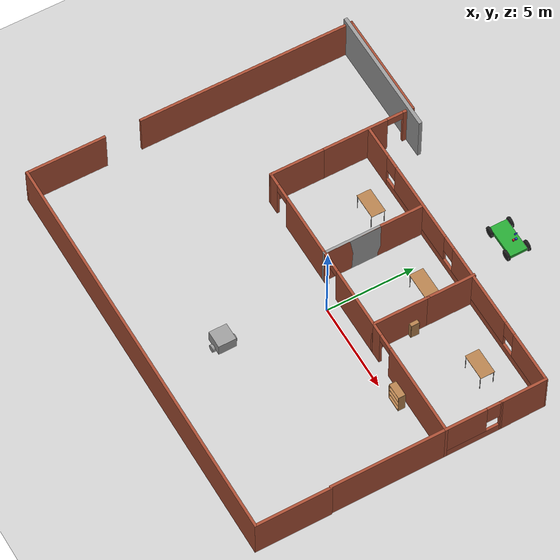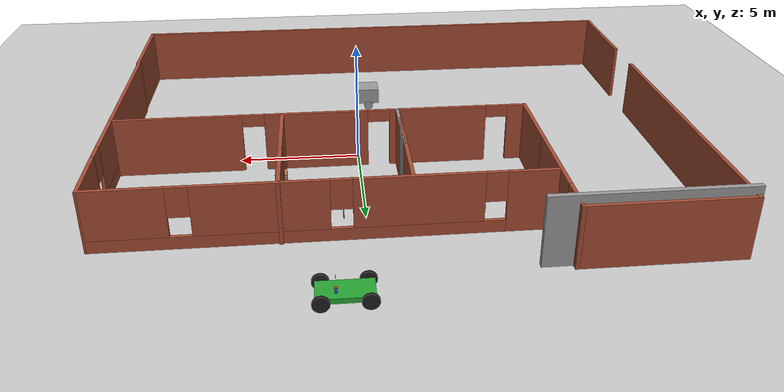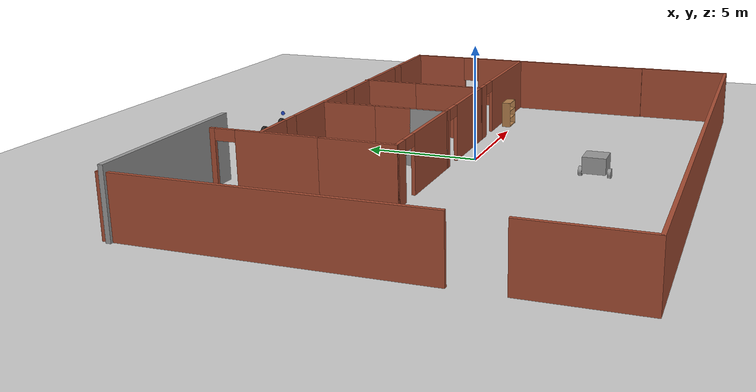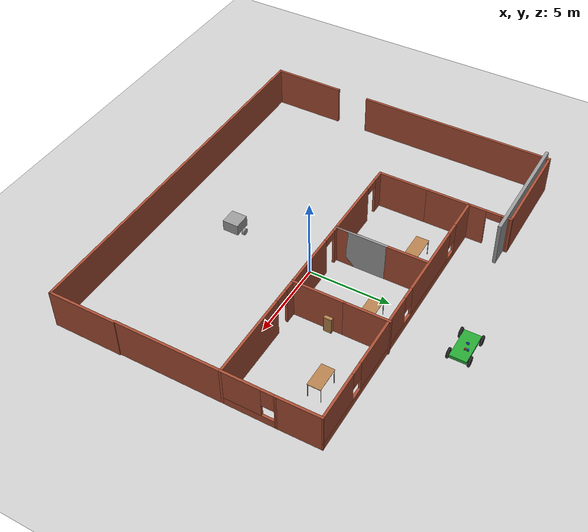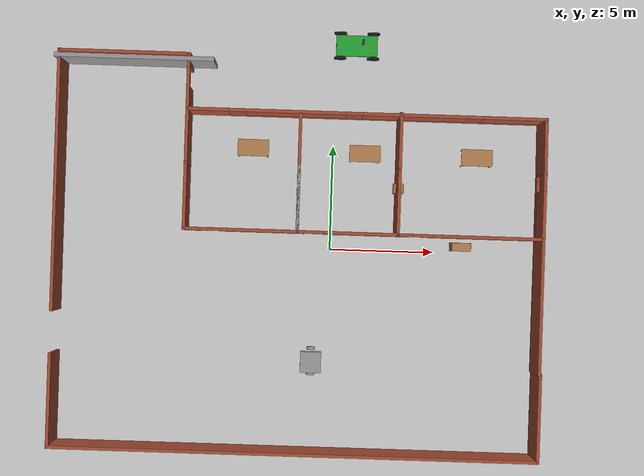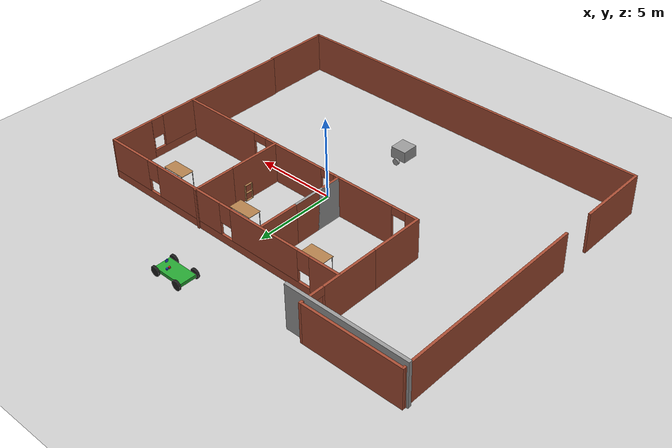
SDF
<sdf version="1.6">
 <world name="default">
  <plugin name="hello" filename="libhello.so"/>
  <light name="sun" type="directional">
   <pose>0 0 10 0 -0 0</pose>
   <diffuse>0.8 0.8 0.8 1</diffuse>
   <specular>0.2 0.2 0.2 1</specular>
   <attenuation>
    <range>1000</range>
    <constant>0.9</constant>
    <linear>0.01</linear>
    <quadratic>0.001</quadratic>
   </attenuation>
   <direction>-0.5 0.1 -0.9</direction>
  </light>
  <model name="ground_plane">
   <static>1</static>
   <link name="link">
    <collision name="collision">
     <geometry><plane><normal>0 0 1</normal><size>100 100</size></plane></geometry>
     <surface>
      <contact><collide_bitmask>65535</collide_bitmask></contact>
      <friction><ode><mu>100</mu><mu2>50</mu2></ode></friction>
     </surface>
    </collision>
    <visual name="visual">
     <cast_shadows>0</cast_shadows>
     <geometry><plane><normal>0 0 1</normal><size>100 100</size></plane></geometry>
     <material>
      <script><uri>file://media/materials/scripts/gazebo.material</uri><name>Gazebo/Grey</name></script>
     </material>
    </visual>
   </link>
  </model>
  <gravity>0 0 -9.8</gravity>
  <magnetic_field>6e-06 2.3e-05 -4.2e-05</magnetic_field>
  <atmosphere type="adiabatic"/>
  <physics name="default_physics" default="0" type="ode">
   <max_step_size>0.001</max_step_size>
   <real_time_factor>1</real_time_factor>
   <real_time_update_rate>1000</real_time_update_rate>
  </physics>
  <scene><ambient>0.4 0.4 0.4 1</ambient><background>0.7 0.7 0.7 1</background><shadows>1</shadows></scene>
  <spherical_coordinates>
   <surface_model>EARTH_WGS84</surface_model>
   <latitude_deg>0</latitude_deg>
   <longitude_deg>0</longitude_deg>
   <elevation>0</elevation>
   <heading_deg>0</heading_deg>
  </spherical_coordinates>
  <model name="factory">
   <pose>-1.52295 -0.36855 0 0 -0 0</pose>
   <link name="Wall_1">
    <collision name="Wall_1_Collision">
     <geometry><box><size>6.5 0.15 2.5</size></box></geometry>
     <pose>0 0 1.25 0 -0 0</pose>
    </collision>
    <visual name="Wall_1_Visual">
     <pose>0 0 1.25 0 -0 0</pose>
     <geometry><box><size>6.5 0.15 2.5</size></box></geometry>
     <material>
      <script><uri>file://media/materials/scripts/gazebo.material</uri><name>Gazebo/Bricks</name></script>
      <ambient>1 1 1 1</ambient>
     </material>
     <meta><layer>0</layer></meta>
    </visual>
    <pose>11.5 -2.025 0 0 -0 1.5708</pose>
   </link>
   <link name="Wall_10">
    <collision name="Wall_10_Collision">
     <geometry><box><size>3.25 0.15 2.5</size></box></geometry>
     <pose>0 0 1.25 0 -0 0</pose>
    </collision>
    <visual name="Wall_10_Visual">
     <pose>0 0 1.25 0 -0 0</pose>
     <geometry><box><size>3.25 0.15 2.5</size></box></geometry>
     <material>
      <script><uri>file://media/materials/scripts/gazebo.material</uri><name>Gazebo/Bricks</name></script>
      <ambient>1 1 1 1</ambient>
     </material>
     <meta><layer>0</layer></meta>
    </visual>
    <pose>-5.45 2.7 0 0 0 -1.5708</pose>
   </link>
   <link name="Wall_11">
    <pose>-2.775 1.15 0 0 -0 0</pose>
    <visual name="Wall_11_Visual_0">
     <pose>-2.34253 0 1.25 0 -0 0</pose>
     <geometry><box><size>0.814938 0.15 2.5</size></box></geometry>
     <material>
      <script><uri>file://media/materials/scripts/gazebo.material</uri><name>Gazebo/Bricks</name></script>
      <ambient>1 1 1 1</ambient>
     </material>
     <meta><layer>0</layer></meta>
    </visual>
    <collision name="Wall_11_Collision_0">
     <geometry><box><size>0.814938 0.15 2.5</size></box></geometry>
     <pose>-2.34253 0 1.25 0 -0 0</pose>
    </collision>
    <visual name="Wall_11_Visual_1">
     <pose>0.857469 0 1.25 0 -0 0</pose>
     <geometry><box><size>3.78506 0.15 2.5</size></box></geometry>
     <material>
      <script><uri>file://media/materials/scripts/gazebo.material</uri><name>Gazebo/Bricks</name></script>
      <ambient>1 1 1 1</ambient>
     </material>
     <meta><layer>0</layer></meta>
    </visual>
    <collision name="Wall_11_Collision_1">
     <geometry><box><size>3.78506 0.15 2.5</size></box></geometry>
     <pose>0.857469 0 1.25 0 -0 0</pose>
    </collision>
    <visual name="Wall_11_Visual_2">
     <pose>-1.48506 0 2.25 0 -0 0</pose>
     <geometry><box><size>0.9 0.15 0.5</size></box></geometry>
     <material>
      <script><uri>file://media/materials/scripts/gazebo.material</uri><name>Gazebo/Bricks</name></script>
      <ambient>1 1 1 1</ambient>
     </material>
     <meta><layer>0</layer></meta>
    </visual>
    <collision name="Wall_11_Collision_2">
     <geometry><box><size>0.9 0.15 0.5</size></box></geometry>
     <pose>-1.48506 0 2.25 0 -0 0</pose>
    </collision>
   </link>
   <link name="Wall_12">
    <collision name="Wall_12_Collision">
     <geometry><box><size>3.25 0.15 2.5</size></box></geometry>
     <pose>0 0 1.25 0 -0 0</pose>
    </collision>
    <visual name="Wall_12_Visual">
     <pose>0 0 1.25 0 -0 0</pose>
     <geometry><box><size>3.25 0.15 2.5</size></box></geometry>
     <material>
      <script><uri>file://media/materials/scripts/gazebo.material</uri><name>Gazebo/Grey</name></script>
      <ambient>1 1 1 1</ambient>
     </material>
     <meta><layer>0</layer></meta>
    </visual>
    <pose>-0.100025 2.69977 0 0 -0 1.57081</pose>
   </link>
   <link name="Wall_13">
    <collision name="Wall_13_Collision">
     <geometry><box><size>3.25 0.15 2.5</size></box></geometry>
     <pose>0 0 1.25 0 -0 0</pose>
    </collision>
    <visual name="Wall_13_Visual">
     <pose>0 0 1.25 0 -0 0</pose>
     <geometry><box><size>3.25 0.15 2.5</size></box></geometry>
     <material>
      <script><uri>file://media/materials/scripts/gazebo.material</uri><name>Gazebo/Bricks</name></script>
      <ambient>1 1 1 1</ambient>
     </material>
     <meta><layer>0</layer></meta>
    </visual>
    <pose>-0.100025 2.69977 0 0 0 -1.57078</pose>
   </link>
   <link name="Wall_14">
    <pose>2.275 1.15 0 0 -0 0</pose>
    <visual name="Wall_14_Visual_0">
     <pose>-2.24379 0 1.25 0 -0 0</pose>
     <geometry><box><size>0.412411 0.15 2.5</size></box></geometry>
     <material>
      <script><uri>file://media/materials/scripts/gazebo.material</uri><name>Gazebo/Bricks</name></script>
      <ambient>1 1 1 1</ambient>
     </material>
     <meta><layer>0</layer></meta>
    </visual>
    <collision name="Wall_14_Collision_0">
     <geometry><box><size>0.412411 0.15 2.5</size></box></geometry>
     <pose>-2.24379 0 1.25 0 -0 0</pose>
    </collision>
    <visual name="Wall_14_Visual_1">
     <pose>0.656206 0 1.25 0 -0 0</pose>
     <geometry><box><size>3.58759 0.15 2.5</size></box></geometry>
     <material>
      <script><uri>file://media/materials/scripts/gazebo.material</uri><name>Gazebo/Bricks</name></script>
      <ambient>1 1 1 1</ambient>
     </material>
     <meta><layer>0</layer></meta>
    </visual>
    <collision name="Wall_14_Collision_1">
     <geometry><box><size>3.58759 0.15 2.5</size></box></geometry>
     <pose>0.656206 0 1.25 0 -0 0</pose>
    </collision>
    <visual name="Wall_14_Visual_2">
     <pose>-1.58759 0 2.25 0 -0 0</pose>
     <geometry><box><size>0.9 0.15 0.5</size></box></geometry>
     <material>
      <script><uri>file://media/materials/scripts/gazebo.material</uri><name>Gazebo/Bricks</name></script>
      <ambient>1 1 1 1</ambient>
     </material>
     <meta><layer>0</layer></meta>
    </visual>
    <collision name="Wall_14_Collision_2">
     <geometry><box><size>0.9 0.15 0.5</size></box></geometry>
     <pose>-1.58759 0 2.25 0 -0 0</pose>
    </collision>
   </link>
   <link name="Wall_18">
    <pose>11.5 2.7 0 0 0 -1.5708</pose>
    <visual name="Wall_18_Visual_0">
     <pose>-1.58269 0 1.25 0 -0 0</pose>
     <geometry><box><size>0.08462 0.15 2.5</size></box></geometry>
     <material>
      <script><uri>file://media/materials/scripts/gazebo.material</uri><name>Gazebo/Bricks</name></script>
      <ambient>1 1 1 1</ambient>
     </material>
     <meta><layer>0</layer></meta>
    </visual>
    <collision name="Wall_18_Collision_0">
     <geometry><box><size>0.08462 0.15 2.5</size></box></geometry>
     <pose>-1.58269 0 1.25 0 -0 0</pose>
    </collision>
    <visual name="Wall_18_Visual_1">
     <pose>0.04231 0 0.25 0 -0 0</pose>
     <geometry><box><size>3.16538 0.15 0.5</size></box></geometry>
     <material>
      <script><uri>file://media/materials/scripts/gazebo.material</uri><name>Gazebo/Bricks</name></script>
      <ambient>1 1 1 1</ambient>
     </material>
     <meta><layer>0</layer></meta>
    </visual>
    <collision name="Wall_18_Collision_1">
     <geometry><box><size>3.16538 0.15 0.5</size></box></geometry>
     <pose>0.04231 0 0.25 0 -0 0</pose>
    </collision>
    <visual name="Wall_18_Visual_2">
     <pose>0.44231 0 1.5 0 -0 0</pose>
     <geometry><box><size>2.36538 0.15 2</size></box></geometry>
     <material>
      <script><uri>file://media/materials/scripts/gazebo.material</uri><name>Gazebo/Bricks</name></script>
      <ambient>1 1 1 1</ambient>
     </material>
     <meta><layer>0</layer></meta>
    </visual>
    <collision name="Wall_18_Collision_2">
     <geometry><box><size>2.36538 0.15 2</size></box></geometry>
     <pose>0.44231 0 1.5 0 -0 0</pose>
    </collision>
    <visual name="Wall_18_Visual_3">
     <pose>-1.14038 0 1.9 0 -0 0</pose>
     <geometry><box><size>0.8 0.15 1.2</size></box></geometry>
     <material>
      <script><uri>file://media/materials/scripts/gazebo.material</uri><name>Gazebo/Bricks</name></script>
      <ambient>1 1 1 1</ambient>
     </material>
     <meta><layer>0</layer></meta>
    </visual>
    <collision name="Wall_18_Collision_3">
     <geometry><box><size>0.8 0.15 1.2</size></box></geometry>
     <pose>-1.14038 0 1.9 0 -0 0</pose>
    </collision>
   </link>
   <link name="Wall_19">
    <pose>8.075 1.15 0 0 -0 3.14159</pose>
    <visual name="Wall_19_Visual_0">
     <pose>-0.851138 0 1.25 0 -0 0</pose>
     <geometry><box><size>5.29772 0.15 2.5</size></box></geometry>
     <material>
      <script><uri>file://media/materials/scripts/gazebo.material</uri><name>Gazebo/Bricks</name></script>
      <ambient>1 1 1 1</ambient>
     </material>
     <meta><layer>0</layer></meta>
    </visual>
    <collision name="Wall_19_Collision_0">
     <geometry><box><size>5.29772 0.15 2.5</size></box></geometry>
     <pose>-0.851138 0 1.25 0 -0 0</pose>
    </collision>
    <visual name="Wall_19_Visual_1">
     <pose>3.09886 0 1.25 0 -0 0</pose>
     <geometry><box><size>0.802276 0.15 2.5</size></box></geometry>
     <material>
      <script><uri>file://media/materials/scripts/gazebo.material</uri><name>Gazebo/Bricks</name></script>
      <ambient>1 1 1 1</ambient>
     </material>
     <meta><layer>0</layer></meta>
    </visual>
    <collision name="Wall_19_Collision_1">
     <geometry><box><size>0.802276 0.15 2.5</size></box></geometry>
     <pose>3.09886 0 1.25 0 -0 0</pose>
    </collision>
    <visual name="Wall_19_Visual_2">
     <pose>2.24772 0 2.25 0 -0 0</pose>
     <geometry><box><size>0.9 0.15 0.5</size></box></geometry>
     <material>
      <script><uri>file://media/materials/scripts/gazebo.material</uri><name>Gazebo/Bricks</name></script>
      <ambient>1 1 1 1</ambient>
     </material>
     <meta><layer>0</layer></meta>
    </visual>
    <collision name="Wall_19_Collision_2">
     <geometry><box><size>0.9 0.15 0.5</size></box></geometry>
     <pose>2.24772 0 2.25 0 -0 0</pose>
    </collision>
   </link>
   <link name="Wall_21">
    <pose>3.04644 6.78716 0 0 -0 0</pose>
    <visual name="Wall_21_Visual_0">
     <pose>-7.52728 0 1.25 0 -0 0</pose>
     <geometry><box><size>1.94543 0.15 2.5</size></box></geometry>
     <material>
      <script><uri>file://media/materials/scripts/gazebo.material</uri><name>Gazebo/Bricks</name></script>
      <ambient>1 1 1 1</ambient>
     </material>
     <meta><layer>0</layer></meta>
    </visual>
    <collision name="Wall_21_Collision_0">
     <geometry><box><size>1.94543 0.15 2.5</size></box></geometry>
     <pose>-7.52728 0 1.25 0 -0 0</pose>
    </collision>
    <visual name="Wall_21_Visual_1">
     <pose>0.972717 0 0.25 0 -0 0</pose>
     <geometry><box><size>15.0546 0.15 0.5</size></box></geometry>
     <material>
      <script><uri>file://media/materials/scripts/gazebo.material</uri><name>Gazebo/Bricks</name></script>
      <ambient>1 1 1 1</ambient>
     </material>
     <meta><layer>0</layer></meta>
    </visual>
    <collision name="Wall_21_Collision_1">
     <geometry><box><size>15.0546 0.15 0.5</size></box></geometry>
     <pose>0.972717 0 0.25 0 -0 0</pose>
    </collision>
    <visual name="Wall_21_Visual_2">
     <pose>-3.37545 0 1.5 0 -0 0</pose>
     <geometry><box><size>4.75824 0.15 2</size></box></geometry>
     <material>
      <script><uri>file://media/materials/scripts/gazebo.material</uri><name>Gazebo/Bricks</name></script>
      <ambient>1 1 1 1</ambient>
     </material>
     <meta><layer>0</layer></meta>
    </visual>
    <collision name="Wall_21_Collision_2">
     <geometry><box><size>4.75824 0.15 2</size></box></geometry>
     <pose>-3.37545 0 1.5 0 -0 0</pose>
    </collision>
    <visual name="Wall_21_Visual_3">
     <pose>2.25316 0 1.5 0 -0 0</pose>
     <geometry><box><size>4.89896 0.15 2</size></box></geometry>
     <material>
      <script><uri>file://media/materials/scripts/gazebo.material</uri><name>Gazebo/Bricks</name></script>
      <ambient>1 1 1 1</ambient>
     </material>
     <meta><layer>0</layer></meta>
    </visual>
    <collision name="Wall_21_Collision_3">
     <geometry><box><size>4.89896 0.15 2</size></box></geometry>
     <pose>2.25316 0 1.5 0 -0 0</pose>
    </collision>
    <visual name="Wall_21_Visual_4">
     <pose>7.00132 0 1.5 0 -0 0</pose>
     <geometry><box><size>2.99736 0.15 2</size></box></geometry>
     <material>
      <script><uri>file://media/materials/scripts/gazebo.material</uri><name>Gazebo/Bricks</name></script>
      <ambient>1 1 1 1</ambient>
     </material>
     <meta><layer>0</layer></meta>
    </visual>
    <collision name="Wall_21_Collision_4">
     <geometry><box><size>2.99736 0.15 2</size></box></geometry>
     <pose>7.00132 0 1.5 0 -0 0</pose>
    </collision>
    <visual name="Wall_21_Visual_5">
     <pose>-6.15457 0 1.9 0 -0 0</pose>
     <geometry><box><size>0.8 0.15 1.2</size></box></geometry>
     <material>
      <script><uri>file://media/materials/scripts/gazebo.material</uri><name>Gazebo/Bricks</name></script>
      <ambient>1 1 1 1</ambient>
     </material>
     <meta><layer>0</layer></meta>
    </visual>
    <collision name="Wall_21_Collision_5">
     <geometry><box><size>0.8 0.15 1.2</size></box></geometry>
     <pose>-6.15457 0 1.9 0 -0 0</pose>
    </collision>
    <visual name="Wall_21_Visual_6">
     <pose>-0.596322 0 1.9 0 -0 0</pose>
     <geometry><box><size>0.8 0.15 1.2</size></box></geometry>
     <material>
      <script><uri>file://media/materials/scripts/gazebo.material</uri><name>Gazebo/Bricks</name></script>
      <ambient>1 1 1 1</ambient>
     </material>
     <meta><layer>0</layer></meta>
    </visual>
    <collision name="Wall_21_Collision_6">
     <geometry><box><size>0.8 0.15 1.2</size></box></geometry>
     <pose>-0.596322 0 1.9 0 -0 0</pose>
    </collision>
    <visual name="Wall_21_Visual_7">
     <pose>5.10264 0 1.9 0 -0 0</pose>
     <geometry><box><size>0.8 0.15 1.2</size></box></geometry>
     <material>
      <script><uri>file://media/materials/scripts/gazebo.material</uri><name>Gazebo/Bricks</name></script>
      <ambient>1 1 1 1</ambient>
     </material>
     <meta><layer>0</layer></meta>
    </visual>
    <collision name="Wall_21_Collision_7">
     <geometry><box><size>0.8 0.15 1.2</size></box></geometry>
     <pose>5.10264 0 1.9 0 -0 0</pose>
    </collision>
   </link>
   <link name="Wall_22">
    <collision name="Wall_22_Collision">
     <geometry><box><size>2.68732 0.15 2.5</size></box></geometry>
     <pose>0 0 1.25 0 -0 0</pose>
    </collision>
    <visual name="Wall_22_Visual">
     <pose>0 0 1.25 0 -0 0</pose>
     <geometry><box><size>2.68732 0.15 2.5</size></box></geometry>
     <material>
      <script><uri>file://media/materials/scripts/gazebo.material</uri><name>Gazebo/Bricks</name></script>
      <ambient>1 1 1 1</ambient>
     </material>
     <meta><layer>0</layer></meta>
    </visual>
    <pose>11.4857 5.51858 0 0 0 -1.55954</pose>
   </link>
   <link name="Wall_28">
    <collision name="Wall_28_Collision">
     <geometry><box><size>2.576 0.15 2.5</size></box></geometry>
     <pose>0 0 1.25 0 -0 0</pose>
    </collision>
    <visual name="Wall_28_Visual">
     <pose>0 0 1.25 0 -0 0</pose>
     <geometry><box><size>2.576 0.15 2.5</size></box></geometry>
     <material>
      <script><uri>file://media/materials/scripts/gazebo.material</uri><name>Gazebo/Bricks</name></script>
      <ambient>1 1 1 1</ambient>
     </material>
     <meta><layer>0</layer></meta>
    </visual>
    <pose>-0.10005 5.46255 0 0 -0 1.5708</pose>
   </link>
   <link name="Wall_3">
    <collision name="Wall_3_Collision">
     <geometry><box><size>3.25 0.15 2.5</size></box></geometry>
     <pose>0 0 1.25 0 -0 0</pose>
    </collision>
    <visual name="Wall_3_Visual">
     <pose>0 0 1.25 0 -0 0</pose>
     <geometry><box><size>3.25 0.15 2.5</size></box></geometry>
     <material>
      <script><uri>file://media/materials/scripts/gazebo.material</uri><name>Gazebo/Bricks</name></script>
      <ambient>1 1 1 1</ambient>
     </material>
     <meta><layer>0</layer></meta>
    </visual>
    <pose>4.65 2.7 0 0 -0 1.5708</pose>
   </link>
   <link name="Wall_30">
    <collision name="Wall_30_Collision">
     <geometry><box><size>2.75 0.15 2.5</size></box></geometry>
     <pose>0 0 1.25 0 -0 0</pose>
    </collision>
    <visual name="Wall_30_Visual">
     <pose>0 0 1.25 0 -0 0</pose>
     <geometry><box><size>2.75 0.15 2.5</size></box></geometry>
     <material>
      <script><uri>file://media/materials/scripts/gazebo.material</uri><name>Gazebo/Bricks</name></script>
      <ambient>1 1 1 1</ambient>
     </material>
     <meta><layer>0</layer></meta>
    </visual>
    <pose>4.65 5.55 0 0 -0 1.5708</pose>
   </link>
   <link name="Wall_32">
    <collision name="Wall_32_Collision">
     <geometry><box><size>4.5 0.15 2.5</size></box></geometry>
     <pose>0 0 1.25 0 -0 0</pose>
    </collision>
    <visual name="Wall_32_Visual">
     <pose>0 0 1.25 0 -0 0</pose>
     <geometry><box><size>4.5 0.15 2.5</size></box></geometry>
     <material>
      <script><uri>file://media/materials/scripts/gazebo.material</uri><name>Gazebo/Bricks</name></script>
      <ambient>1 1 1 1</ambient>
     </material>
     <meta><layer>0</layer></meta>
    </visual>
    <pose>-11.55 -7.175 0 0 0 -1.5708</pose>
   </link>
   <link name="Wall_33">
    <collision name="Wall_33_Collision">
     <geometry><box><size>23.25 0.15 2.5</size></box></geometry>
     <pose>0 0 1.25 0 -0 0</pose>
    </collision>
    <visual name="Wall_33_Visual">
     <pose>0 0 1.25 0 -0 0</pose>
     <geometry><box><size>23.25 0.15 2.5</size></box></geometry>
     <material>
      <script><uri>file://media/materials/scripts/gazebo.material</uri><name>Gazebo/Bricks</name></script>
      <ambient>1 1 1 1</ambient>
     </material>
     <meta><layer>0</layer></meta>
    </visual>
    <pose>1e-06 -9.35 0 0 -0 0</pose>
   </link>
   <link name="Wall_34">
    <collision name="Wall_34_Collision">
     <geometry><box><size>4.25 0.15 2.5</size></box></geometry>
     <pose>0 0 1.25 0 -0 0</pose>
    </collision>
    <visual name="Wall_34_Visual">
     <pose>0 0 1.25 0 -0 0</pose>
     <geometry><box><size>4.25 0.15 2.5</size></box></geometry>
     <material>
      <script><uri>file://media/materials/scripts/gazebo.material</uri><name>Gazebo/Bricks</name></script>
      <ambient>1 1 1 1</ambient>
     </material>
     <meta><layer>0</layer></meta>
    </visual>
    <pose>11.55 -7.3 0 0 -0 1.5708</pose>
   </link>
   <link name="Wall_5">
    <pose>-5.45 6.8 0 0 -0 1.5708</pose>
    <visual name="Wall_5_Visual_0">
     <pose>-0.779824 0 1.25 0 -0 0</pose>
     <geometry><box><size>3.69035 0.15 2.5</size></box></geometry>
     <material>
      <script><uri>file://media/materials/scripts/gazebo.material</uri><name>Gazebo/Bricks</name></script>
      <ambient>1 1 1 1</ambient>
     </material>
     <meta><layer>0</layer></meta>
    </visual>
    <collision name="Wall_5_Collision_0">
     <geometry><box><size>3.69035 0.15 2.5</size></box></geometry>
     <pose>-0.779824 0 1.25 0 -0 0</pose>
    </collision>
    <visual name="Wall_5_Visual_1">
     <pose>2.29518 0 1.25 0 -0 0</pose>
     <geometry><box><size>0.659647 0.15 2.5</size></box></geometry>
     <material>
      <script><uri>file://media/materials/scripts/gazebo.material</uri><name>Gazebo/Bricks</name></script>
      <ambient>1 1 1 1</ambient>
     </material>
     <meta><layer>0</layer></meta>
    </visual>
    <collision name="Wall_5_Collision_1">
     <geometry><box><size>0.659647 0.15 2.5</size></box></geometry>
     <pose>2.29518 0 1.25 0 -0 0</pose>
    </collision>
    <visual name="Wall_5_Visual_2">
     <pose>1.51535 0 2.25 0 -0 0</pose>
     <geometry><box><size>0.9 0.15 0.5</size></box></geometry>
     <material>
      <script><uri>file://media/materials/scripts/gazebo.material</uri><name>Gazebo/Bricks</name></script>
      <ambient>1 1 1 1</ambient>
     </material>
     <meta><layer>0</layer></meta>
    </visual>
    <collision name="Wall_5_Collision_2">
     <geometry><box><size>0.9 0.15 0.5</size></box></geometry>
     <pose>1.51535 0 2.25 0 -0 0</pose>
    </collision>
   </link>
   <link name="Wall_6">
    <collision name="Wall_6_Collision">
     <geometry><box><size>6.25 0.15 2.5</size></box></geometry>
     <pose>0 0 1.25 0 -0 0</pose>
    </collision>
    <visual name="Wall_6_Visual">
     <pose>0 0 1.25 0 -0 0</pose>
     <geometry><box><size>6.25 0.15 2.5</size></box></geometry>
     <material>
      <script><uri>file://media/materials/scripts/gazebo.material</uri><name>Gazebo/Bricks</name></script>
      <ambient>1 1 1 1</ambient>
     </material>
     <meta><layer>0</layer></meta>
    </visual>
    <pose>-8.5 9.35 0 0 -0 3.14159</pose>
   </link>
   <link name="Wall_7">
    <pose>-11.55 2.175 0 0 0 -1.5708</pose>
    <visual name="Wall_7_Visual_0">
     <pose>-1.06219 0 1.25 0 -0 0</pose>
     <geometry><box><size>12.3756 0.15 2.5</size></box></geometry>
     <material>
      <script><uri>file://media/materials/scripts/gazebo.material</uri><name>Gazebo/Bricks</name></script>
      <ambient>1 1 1 1</ambient>
     </material>
     <meta><layer>0</layer></meta>
    </visual>
    <collision name="Wall_7_Collision_0">
     <geometry><box><size>12.3756 0.15 2.5</size></box></geometry>
     <pose>-1.06219 0 1.25 0 -0 0</pose>
    </collision>
   </link>
   <static>1</static>
  </model>
  <model name="car">
   <link name="chassis">
    <pose>0 0 0.3 0 -0 0</pose>
    <collision name="collision"><geometry><box><size>2 1 0.2</size></box></geometry></collision>
    <visual name="visual">
     <geometry><box><size>2 1 0.2</size></box></geometry>
     <material>
      <script><uri>file://media/materials/scripts/gazebo.material</uri><name>Gazebo/Green</name></script>
     </material>
    </visual>
    <inertial>
     <inertia><ixx>1</ixx><ixy>0</ixy><ixz>0</ixz><iyy>1</iyy><iyz>0</iyz><izz>1</izz></inertia>
     <mass>1</mass>
    </inertial>
   </link>
   <link name="front_left_wheel">
    <pose>0.8 0.6 0.3 -0 1.5707 1.5707</pose>
    <collision name="collision">
     <geometry><cylinder><radius>0.3</radius><length>0.1</length></cylinder></geometry>
    </collision>
    <visual name="visual">
     <geometry><cylinder><radius>0.3</radius><length>0.1</length></cylinder></geometry>
     <material>
      <script><uri>file://media/materials/scripts/gazebo.material</uri><name>Gazebo/Black</name></script>
     </material>
    </visual>
    <inertial>
     <inertia><ixx>1</ixx><ixy>0</ixy><ixz>0</ixz><iyy>1</iyy><iyz>0</iyz><izz>1</izz></inertia>
     <mass>1</mass>
    </inertial>
   </link>
   <link name="front_right_wheel">
    <pose>0.8 -0.6 0.3 -0 1.5707 1.5707</pose>
    <collision name="collision">
     <geometry><cylinder><radius>0.3</radius><length>0.1</length></cylinder></geometry>
    </collision>
    <visual name="visual">
     <geometry><cylinder><radius>0.3</radius><length>0.1</length></cylinder></geometry>
     <material>
      <script><uri>file://media/materials/scripts/gazebo.material</uri><name>Gazebo/Black</name></script>
     </material>
    </visual>
    <inertial>
     <inertia><ixx>1</ixx><ixy>0</ixy><ixz>0</ixz><iyy>1</iyy><iyz>0</iyz><izz>1</izz></inertia>
     <mass>1</mass>
    </inertial>
   </link>
   <link name="back_right_wheel">
    <pose>-0.8 -0.6 0.3 -0 1.5707 1.5707</pose>
    <collision name="collision">
     <geometry><cylinder><radius>0.3</radius><length>0.1</length></cylinder></geometry>
    </collision>
    <visual name="visual">
     <geometry><cylinder><radius>0.3</radius><length>0.1</length></cylinder></geometry>
     <material>
      <script><uri>file://media/materials/scripts/gazebo.material</uri><name>Gazebo/Black</name></script>
     </material>
    </visual>
    <inertial>
     <inertia><ixx>1</ixx><ixy>0</ixy><ixz>0</ixz><iyy>1</iyy><iyz>0</iyz><izz>1</izz></inertia>
     <mass>1</mass>
    </inertial>
   </link>
   <link name="back_left_wheel">
    <pose>-0.8 0.6 0.3 -0 1.5707 1.5707</pose>
    <collision name="collision">
     <geometry><cylinder><radius>0.3</radius><length>0.1</length></cylinder></geometry>
    </collision>
    <visual name="visual">
     <geometry><cylinder><radius>0.3</radius><length>0.1</length></cylinder></geometry>
     <material>
      <script><uri>file://media/materials/scripts/gazebo.material</uri><name>Gazebo/Black</name></script>
     </material>
    </visual>
    <inertial>
     <inertia><ixx>1</ixx><ixy>0</ixy><ixz>0</ixz><iyy>1</iyy><iyz>0</iyz><izz>1</izz></inertia>
     <mass>1</mass>
    </inertial>
   </link>
   <link name="gas_pedal">
    <pose>0.3 0.1 0.5 0 -0 0</pose>
    <collision name="collision"><geometry><box><size>0.1 0.1 0.1</size></box></geometry></collision>
    <visual name="visual">
     <geometry><box><size>0.1 0.1 0.1</size></box></geometry>
     <material>
      <script><uri>file://media/materials/scripts/gazebo.material</uri><name>Gazebo/Red</name></script>
     </material>
    </visual>
    <inertial>
     <inertia><ixx>1</ixx><ixy>0</ixy><ixz>0</ixz><iyy>1</iyy><iyz>0</iyz><izz>1</izz></inertia>
     <mass>1</mass>
    </inertial>
   </link>
   <link name="brake_pedal">
    <pose>0.3 0.25 0.5 0 -0 0</pose>
    <collision name="collision"><geometry><box><size>0.1 0.1 0.1</size></box></geometry></collision>
    <visual name="visual">
     <geometry><box><size>0.1 0.1 0.1</size></box></geometry>
     <material>
      <script><uri>file://media/materials/scripts/gazebo.material</uri><name>Gazebo/Blue</name></script>
     </material>
    </visual>
    <inertial>
     <inertia><ixx>1</ixx><ixy>0</ixy><ixz>0</ixz><iyy>1</iyy><iyz>0</iyz><izz>1</izz></inertia>
     <mass>1</mass>
    </inertial>
   </link>
   <link name="steering_wheel">
    <pose>0.3 0.2 1 0 1.5707 0</pose>
    <collision name="collision">
     <geometry><cylinder><radius>0.1</radius><length>0.01</length></cylinder></geometry>
    </collision>
    <visual name="visual">
     <geometry><cylinder><radius>0.1</radius><length>0.01</length></cylinder></geometry>
     <material>
      <script><uri>file://media/materials/scripts/gazebo.material</uri><name>Gazebo/Blue</name></script>
     </material>
    </visual>
    <inertial>
     <inertia><ixx>1</ixx><ixy>0</ixy><ixz>0</ixz><iyy>1</iyy><iyz>0</iyz><izz>1</izz></inertia>
     <mass>1</mass>
    </inertial>
   </link>
   <joint name="gas_joint" type="prismatic">
    <parent>chassis</parent>
    <child>gas_pedal</child>
    <axis>
     <xyz>1 0 0</xyz>
     <limit><lower>0</lower><upper>0.2</upper></limit>
     <use_parent_model_frame>1</use_parent_model_frame>
     <dynamics><spring_reference>0</spring_reference><spring_stiffness>0</spring_stiffness></dynamics>
    </axis>
   </joint>
   <joint name="brake_joint" type="prismatic">
    <parent>chassis</parent>
    <child>brake_pedal</child>
    <axis>
     <xyz>1 0 0</xyz>
     <limit><lower>0</lower><upper>0.2</upper></limit>
     <use_parent_model_frame>1</use_parent_model_frame>
     <dynamics><spring_reference>0</spring_reference><spring_stiffness>0</spring_stiffness></dynamics>
    </axis>
   </joint>
   <joint name="steering_joint" type="revolute">
    <parent>chassis</parent>
    <child>steering_wheel</child>
    <axis>
     <xyz>1 0 0</xyz>
     <limit><lower>-7.853</lower><upper>7.853</upper></limit>
     <use_parent_model_frame>1</use_parent_model_frame>
     <dynamics><spring_reference>0</spring_reference><spring_stiffness>0</spring_stiffness></dynamics>
    </axis>
   </joint>
   <joint name="front_left_joint" type="revolute2">
    <parent>chassis</parent>
    <child>front_left_wheel</child>
    <axis>
     <xyz>0 0 1</xyz>
     <limit><lower>8.62344e-06</lower><upper>8.62344e-06</upper></limit>
     <use_parent_model_frame>1</use_parent_model_frame>
     <dynamics><spring_reference>0</spring_reference><spring_stiffness>0</spring_stiffness></dynamics>
    </axis>
    <axis2>
     <xyz>0 1 0</xyz>
     <use_parent_model_frame>1</use_parent_model_frame>
     <dynamics><spring_reference>0</spring_reference><spring_stiffness>0</spring_stiffness></dynamics>
    </axis2>
    <physics><ode><limit><cfm>0</cfm><erp>0.9</erp></limit></ode></physics>
   </joint>
   <joint name="front_right_joint" type="revolute2">
    <parent>chassis</parent>
    <child>front_right_wheel</child>
    <axis>
     <xyz>0 0 1</xyz>
     <limit><lower>8.62344e-06</lower><upper>8.62344e-06</upper></limit>
     <use_parent_model_frame>1</use_parent_model_frame>
     <dynamics><spring_reference>0</spring_reference><spring_stiffness>0</spring_stiffness></dynamics>
    </axis>
    <axis2>
     <xyz>0 1 0</xyz>
     <use_parent_model_frame>1</use_parent_model_frame>
     <dynamics><spring_reference>0</spring_reference><spring_stiffness>0</spring_stiffness></dynamics>
    </axis2>
    <physics><ode><limit><cfm>0</cfm><erp>0.9</erp></limit></ode></physics>
   </joint>
   <joint name="back_right_joint" type="revolute2">
    <parent>chassis</parent>
    <child>back_right_wheel</child>
    <axis>
     <xyz>0 0 1</xyz>
     <limit><lower>0</lower><upper>0</upper></limit>
     <use_parent_model_frame>1</use_parent_model_frame>
     <dynamics><spring_reference>0</spring_reference><spring_stiffness>0</spring_stiffness></dynamics>
    </axis>
    <axis2>
     <xyz>0 1 0</xyz>
     <use_parent_model_frame>1</use_parent_model_frame>
     <dynamics><spring_reference>0</spring_reference><spring_stiffness>0</spring_stiffness></dynamics>
    </axis2>
    <physics><ode><limit><cfm>0</cfm><erp>0.9</erp></limit></ode></physics>
   </joint>
   <joint name="back_left_joint" type="revolute2">
    <parent>chassis</parent>
    <child>back_left_wheel</child>
    <axis>
     <xyz>0 0 1</xyz>
     <limit><lower>0</lower><upper>0</upper></limit>
     <use_parent_model_frame>1</use_parent_model_frame>
     <dynamics><spring_reference>0</spring_reference><spring_stiffness>0</spring_stiffness></dynamics>
    </axis>
    <axis2>
     <xyz>0 1 0</xyz>
     <use_parent_model_frame>1</use_parent_model_frame>
     <dynamics><spring_reference>0</spring_reference><spring_stiffness>0</spring_stiffness></dynamics>
    </axis2>
    <physics><ode><limit><cfm>0</cfm><erp>0.9</erp></limit></ode></physics>
   </joint>
   <plugin name="vehicle" filename="libVehiclePlugin.so">
    <front_left>front_left_joint</front_left>
    <front_right>front_right_joint</front_right>
    <back_left>back_left_joint</back_left>
    <back_right>back_right_joint</back_right>
    <gas>gas_joint</gas>
    <brake>brake_joint</brake>
    <steering>steering_joint</steering>
    <front_power>10</front_power>
    <rear_power>10</rear_power>
    <tire_angle_range>0.5</tire_angle_range>
    <max_speed>10</max_speed>
    <aero_load>0.1</aero_load>
   </plugin>
   <pose>0.989553 9.89156 -0.002615 -0.000273 0.000907 0.000994</pose>
  </model>
  <model name="table">
   <static>1</static>
   <link name="link">
    <collision name="surface">
     <pose>0 0 1 0 -0 0</pose>
     <geometry><box><size>1.5 0.8 0.03</size></box></geometry>
     <surface><friction><ode><mu>0.6</mu><mu2>0.6</mu2></ode></friction></surface>
    </collision>
    <visual name="visual1">
     <pose>0 0 1 0 -0 0</pose>
     <geometry><box><size>1.5 0.8 0.03</size></box></geometry>
     <material>
      <script><uri>file://media/materials/scripts/gazebo.material</uri><name>Gazebo/Wood</name></script>
     </material>
    </visual>
    <collision name="front_left_leg">
     <pose>0.68 0.38 0.5 0 -0 0</pose>
     <geometry><cylinder><radius>0.02</radius><length>1</length></cylinder></geometry>
    </collision>
    <visual name="front_left_leg">
     <pose>0.68 0.38 0.5 0 -0 0</pose>
     <geometry><cylinder><radius>0.02</radius><length>1</length></cylinder></geometry>
     <material>
      <script><uri>file://media/materials/scripts/gazebo.material</uri><name>Gazebo/Grey</name></script>
     </material>
    </visual>
    <collision name="front_right_leg">
     <pose>0.68 -0.38 0.5 0 -0 0</pose>
     <geometry><cylinder><radius>0.02</radius><length>1</length></cylinder></geometry>
    </collision>
    <visual name="front_right_leg">
     <pose>0.68 -0.38 0.5 0 -0 0</pose>
     <geometry><cylinder><radius>0.02</radius><length>1</length></cylinder></geometry>
     <material>
      <script><uri>file://media/materials/scripts/gazebo.material</uri><name>Gazebo/Grey</name></script>
     </material>
    </visual>
    <collision name="back_right_leg">
     <pose>-0.68 -0.38 0.5 0 -0 0</pose>
     <geometry><cylinder><radius>0.02</radius><length>1</length></cylinder></geometry>
    </collision>
    <visual name="back_right_leg">
     <pose>-0.68 -0.38 0.5 0 -0 0</pose>
     <geometry><cylinder><radius>0.02</radius><length>1</length></cylinder></geometry>
     <material>
      <script><uri>file://media/materials/scripts/gazebo.material</uri><name>Gazebo/Grey</name></script>
     </material>
    </visual>
    <collision name="back_left_leg">
     <pose>-0.68 0.38 0.5 0 -0 0</pose>
     <geometry><cylinder><radius>0.02</radius><length>1</length></cylinder></geometry>
    </collision>
    <visual name="back_left_leg">
     <pose>-0.68 0.38 0.5 0 -0 0</pose>
     <geometry><cylinder><radius>0.02</radius><length>1</length></cylinder></geometry>
     <material>
      <script><uri>file://media/materials/scripts/gazebo.material</uri><name>Gazebo/Grey</name></script>
     </material>
    </visual>
   </link>
   <pose>-3.85458 4.76548 0 0 -0 0</pose>
  </model>
  <model name="table_0">
   <static>1</static>
   <link name="link">
    <collision name="surface">
     <pose>0 0 1 0 -0 0</pose>
     <geometry><box><size>1.5 0.8 0.03</size></box></geometry>
     <surface><friction><ode><mu>0.6</mu><mu2>0.6</mu2></ode></friction></surface>
    </collision>
    <visual name="visual1">
     <pose>0 0 1 0 -0 0</pose>
     <geometry><box><size>1.5 0.8 0.03</size></box></geometry>
     <material>
      <script><uri>file://media/materials/scripts/gazebo.material</uri><name>Gazebo/Wood</name></script>
     </material>
    </visual>
    <collision name="front_left_leg">
     <pose>0.68 0.38 0.5 0 -0 0</pose>
     <geometry><cylinder><radius>0.02</radius><length>1</length></cylinder></geometry>
    </collision>
    <visual name="front_left_leg">
     <pose>0.68 0.38 0.5 0 -0 0</pose>
     <geometry><cylinder><radius>0.02</radius><length>1</length></cylinder></geometry>
     <material>
      <script><uri>file://media/materials/scripts/gazebo.material</uri><name>Gazebo/Grey</name></script>
     </material>
    </visual>
    <collision name="front_right_leg">
     <pose>0.68 -0.38 0.5 0 -0 0</pose>
     <geometry><cylinder><radius>0.02</radius><length>1</length></cylinder></geometry>
    </collision>
    <visual name="front_right_leg">
     <pose>0.68 -0.38 0.5 0 -0 0</pose>
     <geometry><cylinder><radius>0.02</radius><length>1</length></cylinder></geometry>
     <material>
      <script><uri>file://media/materials/scripts/gazebo.material</uri><name>Gazebo/Grey</name></script>
     </material>
    </visual>
    <collision name="back_right_leg">
     <pose>-0.68 -0.38 0.5 0 -0 0</pose>
     <geometry><cylinder><radius>0.02</radius><length>1</length></cylinder></geometry>
    </collision>
    <visual name="back_right_leg">
     <pose>-0.68 -0.38 0.5 0 -0 0</pose>
     <geometry><cylinder><radius>0.02</radius><length>1</length></cylinder></geometry>
     <material>
      <script><uri>file://media/materials/scripts/gazebo.material</uri><name>Gazebo/Grey</name></script>
     </material>
    </visual>
    <collision name="back_left_leg">
     <pose>-0.68 0.38 0.5 0 -0 0</pose>
     <geometry><cylinder><radius>0.02</radius><length>1</length></cylinder></geometry>
    </collision>
    <visual name="back_left_leg">
     <pose>-0.68 0.38 0.5 0 -0 0</pose>
     <geometry><cylinder><radius>0.02</radius><length>1</length></cylinder></geometry>
     <material>
      <script><uri>file://media/materials/scripts/gazebo.material</uri><name>Gazebo/Grey</name></script>
     </material>
    </visual>
   </link>
   <pose>1.51676 4.64382 0 0 -0 0</pose>
  </model>
  <model name="table_1">
   <static>1</static>
   <link name="link">
    <collision name="surface">
     <pose>0 0 1 0 -0 0</pose>
     <geometry><box><size>1.5 0.8 0.03</size></box></geometry>
     <surface><friction><ode><mu>0.6</mu><mu2>0.6</mu2></ode></friction></surface>
    </collision>
    <visual name="visual1">
     <pose>0 0 1 0 -0 0</pose>
     <geometry><box><size>1.5 0.8 0.03</size></box></geometry>
     <material>
      <script><uri>file://media/materials/scripts/gazebo.material</uri><name>Gazebo/Wood</name></script>
     </material>
    </visual>
    <collision name="front_left_leg">
     <pose>0.68 0.38 0.5 0 -0 0</pose>
     <geometry><cylinder><radius>0.02</radius><length>1</length></cylinder></geometry>
    </collision>
    <visual name="front_left_leg">
     <pose>0.68 0.38 0.5 0 -0 0</pose>
     <geometry><cylinder><radius>0.02</radius><length>1</length></cylinder></geometry>
     <material>
      <script><uri>file://media/materials/scripts/gazebo.material</uri><name>Gazebo/Grey</name></script>
     </material>
    </visual>
    <collision name="front_right_leg">
     <pose>0.68 -0.38 0.5 0 -0 0</pose>
     <geometry><cylinder><radius>0.02</radius><length>1</length></cylinder></geometry>
    </collision>
    <visual name="front_right_leg">
     <pose>0.68 -0.38 0.5 0 -0 0</pose>
     <geometry><cylinder><radius>0.02</radius><length>1</length></cylinder></geometry>
     <material>
      <script><uri>file://media/materials/scripts/gazebo.material</uri><name>Gazebo/Grey</name></script>
     </material>
    </visual>
    <collision name="back_right_leg">
     <pose>-0.68 -0.38 0.5 0 -0 0</pose>
     <geometry><cylinder><radius>0.02</radius><length>1</length></cylinder></geometry>
    </collision>
    <visual name="back_right_leg">
     <pose>-0.68 -0.38 0.5 0 -0 0</pose>
     <geometry><cylinder><radius>0.02</radius><length>1</length></cylinder></geometry>
     <material>
      <script><uri>file://media/materials/scripts/gazebo.material</uri><name>Gazebo/Grey</name></script>
     </material>
    </visual>
    <collision name="back_left_leg">
     <pose>-0.68 0.38 0.5 0 -0 0</pose>
     <geometry><cylinder><radius>0.02</radius><length>1</length></cylinder></geometry>
    </collision>
    <visual name="back_left_leg">
     <pose>-0.68 0.38 0.5 0 -0 0</pose>
     <geometry><cylinder><radius>0.02</radius><length>1</length></cylinder></geometry>
     <material>
      <script><uri>file://media/materials/scripts/gazebo.material</uri><name>Gazebo/Grey</name></script>
     </material>
    </visual>
   </link>
   <pose>6.89937 4.6144 0 0 -0 0</pose>
  </model>
  <model name="follower">
   <link name="link_0">
    <pose>0 -0.021667 0.266627 0 -0 0</pose>
    <inertial>
     <mass>1</mass>
     <inertia>
      <ixx>0.166667</ixx>
      <ixy>0</ixy>
      <ixz>0</ixz>
      <iyy>0.166667</iyy>
      <iyz>0</iyz>
      <izz>0.166667</izz>
     </inertia>
     <pose>0 0 0.2 0 -0 0</pose>
    </inertial>
    <visual name="visual">
     <geometry><box><size>1 1 0.7</size></box></geometry>
     <material>
      <lighting>1</lighting>
      <script><uri>file://media/materials/scripts/gazebo.material</uri><name>Gazebo/Grey</name></script>
      <shader type="pixel"><normal_map>__default__</normal_map></shader>
      <ambient>0.3 0.3 0.3 1</ambient>
      <diffuse>0.7 0.7 0.7 1</diffuse>
      <specular>0.01 0.01 0.01 1</specular>
      <emissive>0 0 0 1</emissive>
     </material>
    </visual>
    <collision name="collision">
     <geometry><box><size>1 1 0.7</size></box></geometry>
     <surface>
      <friction>
       <ode><mu>1</mu><mu2>1</mu2><fdir1>0 0 0</fdir1><slip1>0</slip1><slip2>0</slip2></ode>
       <torsional>
        <coefficient>1</coefficient>
        <patch_radius>0</patch_radius>
        <surface_radius>0</surface_radius>
        <use_patch_radius>1</use_patch_radius>
        <ode><slip>0</slip></ode>
       </torsional>
      </friction>
      <bounce><restitution_coefficient>0</restitution_coefficient><threshold>1e+06</threshold></bounce>
      <contact>
       <collide_without_contact>0</collide_without_contact>
       <collide_without_contact_bitmask>1</collide_without_contact_bitmask>
       <collide_bitmask>1</collide_bitmask>
       <ode>
        <soft_cfm>0</soft_cfm>
        <soft_erp>0.2</soft_erp>
        <kp>1e+13</kp>
        <kd>1</kd>
        <max_vel>0.01</max_vel>
        <min_depth>0</min_depth>
       </ode>
       <bullet>
        <split_impulse>1</split_impulse>
        <split_impulse_penetration_threshold>-0.01</split_impulse_penetration_threshold>
        <soft_cfm>0</soft_cfm>
        <soft_erp>0.2</soft_erp>
        <kp>1e+13</kp>
        <kd>1</kd>
       </bullet>
      </contact>
     </surface>
    </collision>
   </link>
   <link name="link_3">
    <pose>0 0.618493 -0.133314 1.57 -0 0</pose>
    <inertial>
     <mass>1</mass>
     <inertia><ixx>0.145833</ixx><ixy>0</ixy><ixz>0</ixz><iyy>0.145833</iyy><iyz>0</iyz><izz>0.125</izz></inertia>
    </inertial>
    <visual name="visual">
     <geometry><cylinder><radius>0.2</radius><length>0.15</length></cylinder></geometry>
     <material>
      <lighting>1</lighting>
      <script><uri>file://media/materials/scripts/gazebo.material</uri><name>Gazebo/Grey</name></script>
      <shader type="pixel"><normal_map>__default__</normal_map></shader>
      <ambient>0.3 0.3 0.3 1</ambient>
      <diffuse>0.7 0.7 0.7 1</diffuse>
      <specular>0.01 0.01 0.01 1</specular>
      <emissive>0 0 0 1</emissive>
     </material>
    </visual>
    <collision name="collision">
     <geometry><cylinder><radius>0.2</radius><length>0.15</length></cylinder></geometry>
     <surface>
      <friction>
       <ode><mu>1</mu><mu2>1</mu2><fdir1>0 0 0</fdir1><slip1>0</slip1><slip2>0</slip2></ode>
       <torsional>
        <coefficient>1</coefficient>
        <patch_radius>0</patch_radius>
        <surface_radius>0</surface_radius>
        <use_patch_radius>1</use_patch_radius>
        <ode><slip>0</slip></ode>
       </torsional>
      </friction>
      <bounce><restitution_coefficient>0</restitution_coefficient><threshold>1e+06</threshold></bounce>
      <contact>
       <collide_without_contact>0</collide_without_contact>
       <collide_without_contact_bitmask>1</collide_without_contact_bitmask>
       <collide_bitmask>1</collide_bitmask>
       <ode>
        <soft_cfm>0</soft_cfm>
        <soft_erp>0.2</soft_erp>
        <kp>1e+13</kp>
        <kd>1</kd>
        <max_vel>0.01</max_vel>
        <min_depth>0</min_depth>
       </ode>
       <bullet>
        <split_impulse>1</split_impulse>
        <split_impulse_penetration_threshold>-0.01</split_impulse_penetration_threshold>
        <soft_cfm>0</soft_cfm>
        <soft_erp>0.2</soft_erp>
        <kp>1e+13</kp>
        <kd>1</kd>
       </bullet>
      </contact>
     </surface>
    </collision>
   </link>
   <link name="link_3_clone">
    <pose>0 -0.596826 -0.133314 1.57 -0 0</pose>
    <inertial>
     <mass>1</mass>
     <inertia><ixx>0.145833</ixx><ixy>0</ixy><ixz>0</ixz><iyy>0.145833</iyy><iyz>0</iyz><izz>0.125</izz></inertia>
    </inertial>
    <visual name="visual">
     <geometry><cylinder><radius>0.2</radius><length>0.15</length></cylinder></geometry>
     <material>
      <lighting>1</lighting>
      <script><uri>file://media/materials/scripts/gazebo.material</uri><name>Gazebo/Grey</name></script>
      <shader type="pixel"><normal_map>__default__</normal_map></shader>
      <ambient>0.3 0.3 0.3 1</ambient>
      <diffuse>0.7 0.7 0.7 1</diffuse>
      <specular>0.01 0.01 0.01 1</specular>
      <emissive>0 0 0 1</emissive>
     </material>
    </visual>
    <collision name="collision">
     <geometry><cylinder><radius>0.2</radius><length>0.15</length></cylinder></geometry>
     <surface>
      <friction>
       <ode><mu>1</mu><mu2>1</mu2><fdir1>0 0 0</fdir1><slip1>0</slip1><slip2>0</slip2></ode>
       <torsional>
        <coefficient>1</coefficient>
        <patch_radius>0</patch_radius>
        <surface_radius>0</surface_radius>
        <use_patch_radius>1</use_patch_radius>
        <ode><slip>0</slip></ode>
       </torsional>
      </friction>
      <bounce><restitution_coefficient>0</restitution_coefficient><threshold>1e+06</threshold></bounce>
      <contact>
       <collide_without_contact>0</collide_without_contact>
       <collide_without_contact_bitmask>1</collide_without_contact_bitmask>
       <collide_bitmask>1</collide_bitmask>
       <ode>
        <soft_cfm>0</soft_cfm>
        <soft_erp>0.2</soft_erp>
        <kp>1e+13</kp>
        <kd>1</kd>
        <max_vel>0.01</max_vel>
        <min_depth>0</min_depth>
       </ode>
       <bullet>
        <split_impulse>1</split_impulse>
        <split_impulse_penetration_threshold>-0.01</split_impulse_penetration_threshold>
        <soft_cfm>0</soft_cfm>
        <soft_erp>0.2</soft_erp>
        <kp>1e+13</kp>
        <kd>1</kd>
       </bullet>
      </contact>
     </surface>
    </collision>
   </link>
   <joint name="link_0_JOINT_3" type="revolute">
    <parent>link_0</parent>
    <child>link_3</child>
    <axis>
     <xyz>0 0 1</xyz>
     <use_parent_model_frame>0</use_parent_model_frame>
     <limit>
      <lower>-1.79769e+308</lower>
      <upper>1.79769e+308</upper>
      <effort>-1</effort>
      <velocity>-1</velocity>
     </limit>
     <dynamics>
      <spring_reference>0</spring_reference>
      <spring_stiffness>0</spring_stiffness>
      <damping>0</damping>
     </dynamics>
    </axis>
    <physics>
     <ode><limit><cfm>0</cfm><erp>0.2</erp></limit><suspension><cfm>0</cfm><erp>0.2</erp></suspension></ode>
    </physics>
   </joint>
   <joint name="link_0_JOINT_5" type="revolute">
    <parent>link_0</parent>
    <child>link_3_clone</child>
    <axis>
     <xyz>0 0 1</xyz>
     <use_parent_model_frame>0</use_parent_model_frame>
     <limit>
      <lower>-1.79769e+308</lower>
      <upper>1.79769e+308</upper>
      <effort>-1</effort>
      <velocity>-1</velocity>
     </limit>
     <dynamics>
      <spring_reference>0</spring_reference>
      <spring_stiffness>0</spring_stiffness>
      <damping>0</damping>
     </dynamics>
    </axis>
    <physics>
     <ode><limit><cfm>0</cfm><erp>0.2</erp></limit><suspension><cfm>0</cfm><erp>0.2</erp></suspension></ode>
    </physics>
   </joint>
   <static>0</static>
   <pose>-0.779807 -5.44896 0.333374 0 -0 0</pose>
  </model>
  <model name="bookshelf">
   <static>1</static>
   <link name="link">
    <inertial><mass>1</mass></inertial>
    <collision name="back">
     <pose>0 0.005 0.6 0 -0 0</pose>
     <geometry><box><size>0.9 0.01 1.2</size></box></geometry>
    </collision>
    <visual name="visual1">
     <pose>0 0.005 0.6 0 -0 0</pose>
     <geometry><box><size>0.9 0.01 1.2</size></box></geometry>
     <material>
      <script><uri>file://media/materials/scripts/gazebo.material</uri><name>Gazebo/Wood</name></script>
     </material>
    </visual>
    <collision name="left_side">
     <pose>0.45 -0.195 0.6 0 -0 0</pose>
     <geometry><box><size>0.02 0.4 1.2</size></box></geometry>
    </collision>
    <visual name="visual2">
     <pose>0.45 -0.195 0.6 0 -0 0</pose>
     <geometry><box><size>0.02 0.4 1.2</size></box></geometry>
     <material>
      <script><uri>file://media/materials/scripts/gazebo.material</uri><name>Gazebo/Wood</name></script>
     </material>
    </visual>
    <collision name="right_side">
     <pose>-0.45 -0.195 0.6 0 -0 0</pose>
     <geometry><box><size>0.02 0.4 1.2</size></box></geometry>
    </collision>
    <visual name="visual3">
     <pose>-0.45 -0.195 0.6 0 -0 0</pose>
     <geometry><box><size>0.02 0.4 1.2</size></box></geometry>
     <material>
      <script><uri>file://media/materials/scripts/gazebo.material</uri><name>Gazebo/Wood</name></script>
     </material>
    </visual>
    <collision name="bottom">
     <pose>0 -0.195 0.03 0 -0 0</pose>
     <geometry><box><size>0.88 0.4 0.06</size></box></geometry>
    </collision>
    <visual name="visual4">
     <pose>0 -0.195 0.03 0 -0 0</pose>
     <geometry><box><size>0.88 0.4 0.06</size></box></geometry>
     <material>
      <script><uri>file://media/materials/scripts/gazebo.material</uri><name>Gazebo/Wood</name></script>
     </material>
    </visual>
    <collision name="top">
     <pose>0 -0.195 1.19 0 -0 0</pose>
     <geometry><box><size>0.88 0.4 0.02</size></box></geometry>
    </collision>
    <visual name="visual5">
     <pose>0 -0.195 1.19 0 -0 0</pose>
     <geometry><box><size>0.88 0.4 0.02</size></box></geometry>
     <material>
      <script><uri>file://media/materials/scripts/gazebo.material</uri><name>Gazebo/Wood</name></script>
     </material>
    </visual>
    <collision name="low_shelf">
     <pose>0 -0.195 0.43 0 -0 0</pose>
     <geometry><box><size>0.88 0.4 0.02</size></box></geometry>
    </collision>
    <visual name="visual6">
     <pose>0 -0.195 0.43 0 -0 0</pose>
     <geometry><box><size>0.88 0.4 0.02</size></box></geometry>
     <material>
      <script><uri>file://media/materials/scripts/gazebo.material</uri><name>Gazebo/Wood</name></script>
     </material>
    </visual>
    <collision name="high_shelf">
     <pose>0 -0.195 0.8 0 -0 0</pose>
     <geometry><box><size>0.88 0.4 0.02</size></box></geometry>
    </collision>
    <visual name="visual7">
     <pose>0 -0.195 0.8 0 -0 0</pose>
     <geometry><box><size>0.88 0.4 0.02</size></box></geometry>
     <material>
      <script><uri>file://media/materials/scripts/gazebo.material</uri><name>Gazebo/Wood</name></script>
     </material>
    </visual>
   </link>
   <pose>6.26573 0.500651 0 0 -0 0</pose>
  </model>
  <model name="cabinet">
   <static>1</static>
   <link name="cabinet_bottom_plate">
    <inertial>
     <pose>0 0 -1 0 -0 0</pose>
     <inertia><ixx>2.05</ixx><ixy>0</ixy><ixz>0</ixz><iyy>2.05</iyy><iyz>0</iyz><izz>2.05</izz></inertia>
     <mass>25</mass>
    </inertial>
    <collision name="cabinet_bottom_plate_geom">
     <pose>0 0 0.01 0 -0 0</pose>
     <geometry><box><size>0.45 0.45 0.02</size></box></geometry>
    </collision>
    <visual name="cabinet_bottom_plate_geom_visual">
     <pose>0 0 0.01 0 -0 0</pose>
     <geometry><box><size>0.45 0.45 0.02</size></box></geometry>
     <material>
      <script><uri>file://media/materials/scripts/gazebo.material</uri><name>Gazebo/Wood</name></script>
     </material>
    </visual>
    <collision name="cabinet_bottom_plate_geom_cabinet_back_plate">
     <pose>0.235 0 0.51 0 -0 0</pose>
     <geometry><box><size>0.02 0.45 1.02</size></box></geometry>
    </collision>
    <visual name="cabinet_bottom_plate_geom_cabinet_back_plate_visual">
     <pose>0.235 0 0.51 0 -0 0</pose>
     <geometry><box><size>0.02 0.45 1.02</size></box></geometry>
     <material>
      <script><uri>file://media/materials/scripts/gazebo.material</uri><name>Gazebo/Wood</name></script>
     </material>
    </visual>
    <collision name="cabinet_bottom_plate_geom_cabinet_left_plate">
     <pose>0 0.235 0.51 0 -0 0</pose>
     <geometry><box><size>0.45 0.02 1.02</size></box></geometry>
    </collision>
    <visual name="cabinet_bottom_plate_geom_cabinet_left_plate_visual">
     <pose>0 0.235 0.51 0 -0 0</pose>
     <geometry><box><size>0.45 0.02 1.02</size></box></geometry>
     <material>
      <script><uri>file://media/materials/scripts/gazebo.material</uri><name>Gazebo/Wood</name></script>
     </material>
    </visual>
    <collision name="cabinet_bottom_plate_geom_cabinet_middle_plate">
     <pose>0 0 0.51 0 -0 0</pose>
     <geometry><box><size>0.45 0.45 0.02</size></box></geometry>
    </collision>
    <visual name="cabinet_bottom_plate_geom_cabinet_middle_plate_visual">
     <pose>0 0 0.51 0 -0 0</pose>
     <geometry><box><size>0.45 0.45 0.02</size></box></geometry>
     <material>
      <script><uri>file://media/materials/scripts/gazebo.material</uri><name>Gazebo/Wood</name></script>
     </material>
    </visual>
    <collision name="cabinet_bottom_plate_geom_cabinet_right_plate">
     <pose>0 -0.235 0.51 0 -0 0</pose>
     <geometry><box><size>0.45 0.02 1.02</size></box></geometry>
    </collision>
    <visual name="cabinet_bottom_plate_geom_cabinet_right_plate_visual">
     <pose>0 -0.235 0.51 0 -0 0</pose>
     <geometry><box><size>0.45 0.02 1.02</size></box></geometry>
     <material>
      <script><uri>file://media/materials/scripts/gazebo.material</uri><name>Gazebo/Wood</name></script>
     </material>
    </visual>
    <collision name="cabinet_bottom_plate_geom_cabinet_top_plate">
     <pose>0 0 1.01 0 -0 0</pose>
     <geometry><box><size>0.45 0.45 0.02</size></box></geometry>
    </collision>
    <visual name="cabinet_bottom_plate_geom_cabinet_top_plate_visual">
     <pose>0 0 1.01 0 -0 0</pose>
     <geometry><box><size>0.45 0.45 0.02</size></box></geometry>
     <material>
      <script><uri>file://media/materials/scripts/gazebo.material</uri><name>Gazebo/Wood</name></script>
     </material>
    </visual>
   </link>
   <pose>3.17796 3.02854 0 0 -0 0</pose>
  </model>
  <model name="grey_wall">
   <static>1</static>
   <link name="link">
    <pose>0 0 1.4 0 -0 0</pose>
    <collision name="collision"><geometry><box><size>7.5 0.2 2.8</size></box></geometry></collision>
    <visual name="visual">
     <cast_shadows>0</cast_shadows>
     <geometry><box><size>7.5 0.2 2.8</size></box></geometry>
     <material>
      <script>
       <uri>model://grey_wall/materials/scripts</uri>
       <uri>model://grey_wall/materials/textures</uri>
       <name>vrc/grey_wall</name>
      </script>
     </material>
    </visual>
   </link>
   <pose>-9.51335 8.72476 0 0 -0 0</pose>
  </model>
 </world>
</sdf>
